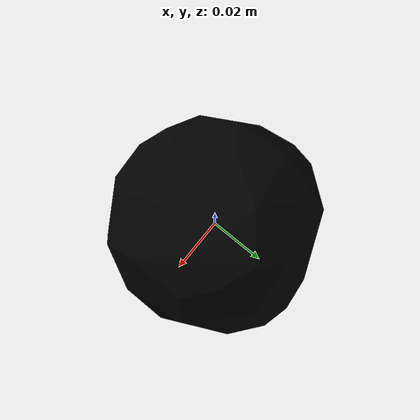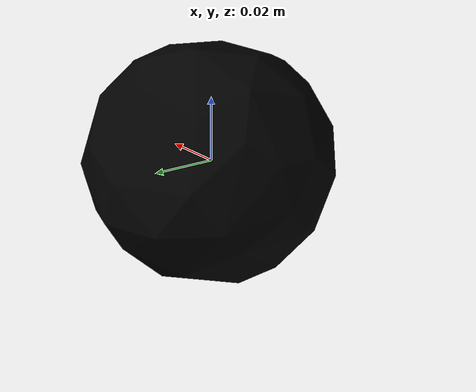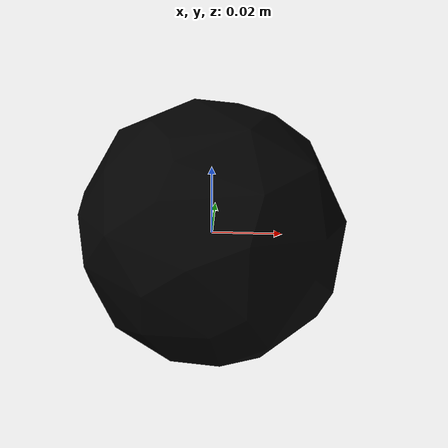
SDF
<?xml version="1.0"?>
<sdf version="1.4">
  <model name="017_orange_textured">
    <pose>0 0 0  0 0 0</pose>
    <link name="body">
      <inertial>
        <mass> 1.0 </mass>
        <pose>0 0 0 0 0 0</pose>
        <inertia>
          <ixx>0.0005257192352946393</ixx>
          <ixy>0.0</ixy>
          <ixz>0.0</ixz>
          <iyy>0.0005297342849243657</iyy>
          <iyz>0.0</iyz>
          <izz>0.0005410297252109953</izz>
        </inertia>
      </inertial>
      <visual name="visual">
        <geometry>
          <mesh>
            <uri>model://017_orange_textured/textured.dae</uri>
          </mesh>
        </geometry>
        <pose>0.010241225926288348 0.036517625392978856 0.009011496158512454 2.750977129534166 1.1508021082702646 1.407769143555476</pose>
      </visual>
      <collision name="collision">
        <geometry>
          <mesh>
            <uri>model://017_orange_textured/textured.col.dae</uri>
          </mesh>
        </geometry>
        <max_contacts>10</max_contacts>
        <surface>
          <friction>
            <ode>
              <mu>0.8</mu>
              <mu2>0.8</mu2>
              <slip1>0</slip1>
              <slip2>0</slip2>
            </ode>
            <torsional>
              <ode/>
            </torsional>
          </friction>
          <contact>
            <ode>
              <kp>1000000.0</kp>
              <kd>1.0</kd>
              <max_vel>0.0</max_vel>
            </ode>
          </contact>
        </surface>
        <pose>0.010241225926288348 0.036517625392978856 0.009011496158512454 2.750977129534166 1.1508021082702646 1.407769143555476</pose>
      </collision>
    </link>
  </model>
</sdf>
